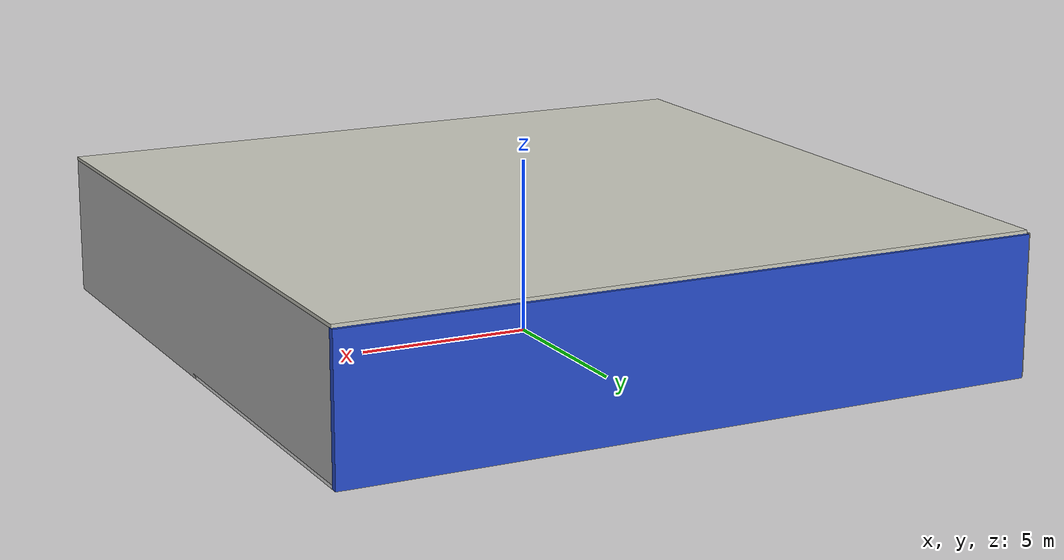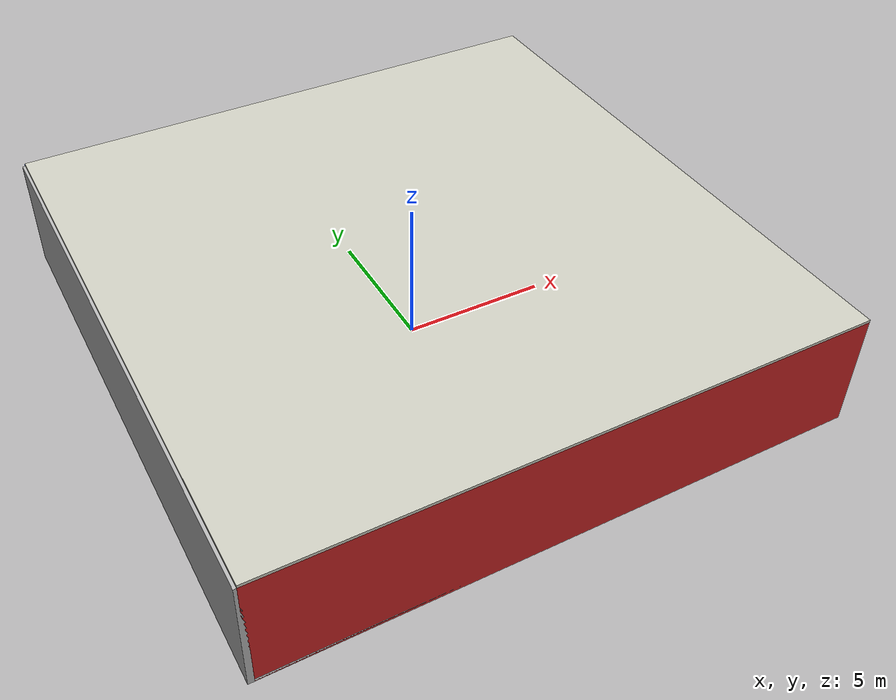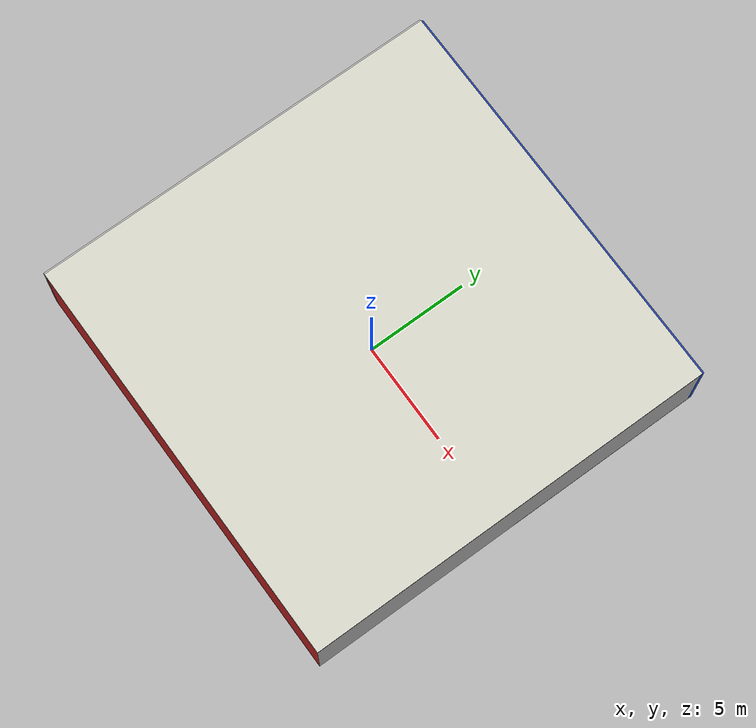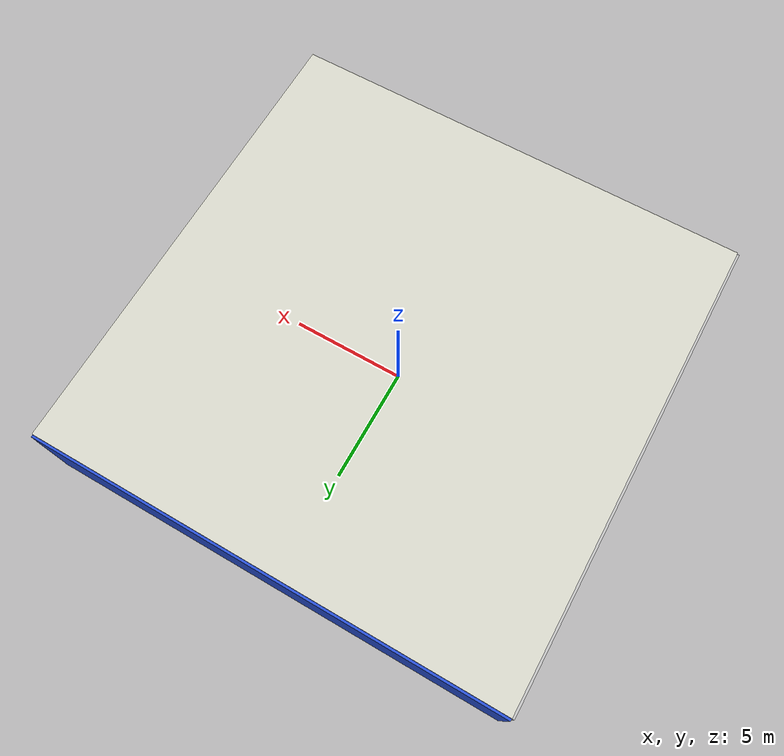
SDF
<sdf version="1.4">
 <world name="default">
  <physics type="ode">
   <max_step_size>0.001</max_step_size>
   <real_time_factor>1</real_time_factor>
   <real_time_update_rate>1000</real_time_update_rate>
   <gravity>0 0 -9.8</gravity>
  </physics>
  <scene><ambient>0.4 0.4 0.4 1</ambient><background>0.7 0.7 0.7 1</background><shadows>1</shadows></scene>
  <model name="Surrounding">
   <static>1</static>
   <link name="Ceiling">
    <collision name="Ceiling_Collision"><geometry><box><size>20 20 0.1</size></box></geometry></collision>
    <visual name="Ceiling_Visual">
     <geometry><box><size>20 20 0.1</size></box></geometry>
     <material>
      <script><uri>file://media/materials/scripts/gazebo.material</uri><name>Gazebo/PaintedWall</name></script>
     </material>
    </visual>
    <pose>0 0 4.05 0 0 0</pose>
   </link>
   <link name="Wall_South">
    <collision name="Wall_South_Collision">
     <geometry><box><size>20 0 4</size></box></geometry>
     <pose>0 0 2 0 -0 0</pose>
    </collision>
    <visual name="Wall_South_Visual">
     <pose>0 0 2 0 -0 0</pose>
     <geometry><box><size>20 0 4</size></box></geometry>
     <material>
      <script><uri>file://media/materials/scripts/gazebo.material</uri><name>Gazebo/RedBright</name></script>
     </material>
    </visual>
    <velocity_decay><linear>0</linear><angular>0</angular></velocity_decay>
    <pose>0 -10 0 0 -0 0</pose>
   </link>
   <link name="Wall_East">
    <collision name="Wall_21_Collision">
     <geometry><box><size>20 0 4</size></box></geometry>
     <pose>0 0 2 0 -0 0</pose>
    </collision>
    <visual name="Wall_21_Visual">
     <pose>0 0 2 0 -0 0</pose>
     <geometry><box><size>20 0 4</size></box></geometry>
     <material>
      <script><uri>file://media/materials/scripts/gazebo.material</uri><name>Gazebo/JointAnchor</name></script>
     </material>
    </visual>
    <velocity_decay><linear>0</linear><angular>0</angular></velocity_decay>
    <pose>10 0 0 0 -0 1.5708</pose>
   </link>
   <link name="Wall_North">
    <collision name="Wall_22_Collision">
     <geometry><box><size>20 0.2 4</size></box></geometry>
     <pose>0 0 2 0 -0 0</pose>
    </collision>
    <visual name="Wall_22_Visual">
     <pose>0 0 2 0 -0 0</pose>
     <geometry><box><size>20 0.2 4</size></box></geometry>
     <material>
      <script><uri>file://media/materials/scripts/gazebo.material</uri><name>Gazebo/Blue</name></script>
     </material>
    </visual>
    <velocity_decay><linear>0</linear><angular>0</angular></velocity_decay>
    <pose>0 10 0 0 -0 0</pose>
   </link>
   <link name="Wall_West">
    <collision name="Wall_23_Collision">
     <geometry><box><size>20 0.2 4</size></box></geometry>
     <pose>0 0 2 0 -0 0</pose>
    </collision>
    <visual name="Wall_23_Visual">
     <pose>0 0 2 0 -0 0</pose>
     <geometry><box><size>20 0.2 4</size></box></geometry>
     <material>
      <script><uri>file://media/materials/scripts/gazebo.material</uri><name>Gazebo/LightOn</name></script>
     </material>
    </visual>
    <velocity_decay><linear>0</linear><angular>0</angular></velocity_decay>
    <pose>-10 0 0 0 0 -1.5708</pose>
   </link>
   <link name="Ground_link">
    <collision name="collision">
     <pose>0 0 .05 0 -0 0</pose>
     <geometry><box><size>20 20 0.1</size></box></geometry>
    </collision>
    <visual name="visual">
     <pose>0 0 .05 0 -0 0</pose>
     <geometry><box><size>20 20 0.1</size></box></geometry>
     <material>
      <script><uri>file://media/materials/scripts/gazebo.material</uri><name>Gazebo/White</name></script>
     </material>
    </visual>
   </link>
   <static>1</static>
  </model>
  <spherical_coordinates>
   <surface_model>EARTH_WGS84</surface_model>
   <latitude_deg>0</latitude_deg>
   <longitude_deg>0</longitude_deg>
   <elevation>0</elevation>
   <heading_deg>0</heading_deg>
  </spherical_coordinates>
  <light name="lightball_0" type="diffuse">
   <diffuse>0.8 0.8 0.8 1</diffuse>
   <specular>0.2 0.2 0.2 1</specular>
   <attenuation>
    <range>100</range>
    <constant>0.7</constant>
    <linear>0.01</linear>
    <quadratic>0.001</quadratic>
   </attenuation>
   <direction>-0.5 0.1 -0.9</direction>
   <pose>0.441850580951 3.11980645518 3.51329309058 0 0 0</pose>
  </light>
  <light name="lightball_1" type="diffuse">
   <diffuse>0.8 0.8 0.8 1</diffuse>
   <specular>0.2 0.2 0.2 1</specular>
   <attenuation>
    <range>100</range>
    <constant>0.7</constant>
    <linear>0.01</linear>
    <quadratic>0.001</quadratic>
   </attenuation>
   <direction>-0.5 0.1 -0.9</direction>
   <pose>2.60991667723 -4.47057046405 1.07724373263 0 0 0</pose>
  </light>
  <light name="lightball_2" type="diffuse">
   <diffuse>0.8 0.8 0.8 1</diffuse>
   <specular>0.2 0.2 0.2 1</specular>
   <attenuation>
    <range>100</range>
    <constant>0.7</constant>
    <linear>0.01</linear>
    <quadratic>0.001</quadratic>
   </attenuation>
   <direction>-0.5 0.1 -0.9</direction>
   <pose>8.43370546976 -5.75697799747 0.509564833327 0 0 0</pose>
  </light>
  <light name="lightball_3" type="diffuse">
   <diffuse>0.8 0.8 0.8 1</diffuse>
   <specular>0.2 0.2 0.2 1</specular>
   <attenuation>
    <range>100</range>
    <constant>0.7</constant>
    <linear>0.01</linear>
    <quadratic>0.001</quadratic>
   </attenuation>
   <direction>-0.5 0.1 -0.9</direction>
   <pose>-3.82197073406 6.41072580045 1.46821790017 0 0 0</pose>
  </light>
  <light name="lightball_4" type="diffuse">
   <diffuse>0.8 0.8 0.8 1</diffuse>
   <specular>0.2 0.2 0.2 1</specular>
   <attenuation>
    <range>100</range>
    <constant>0.7</constant>
    <linear>0.01</linear>
    <quadratic>0.001</quadratic>
   </attenuation>
   <direction>-0.5 0.1 -0.9</direction>
   <pose>5.29973477295 4.16604030252 0.88564650447 0 0 0</pose>
  </light>
  <light name="lightball_5" type="diffuse">
   <diffuse>0.8 0.8 0.8 1</diffuse>
   <specular>0.2 0.2 0.2 1</specular>
   <attenuation>
    <range>100</range>
    <constant>0.7</constant>
    <linear>0.01</linear>
    <quadratic>0.001</quadratic>
   </attenuation>
   <direction>-0.5 0.1 -0.9</direction>
   <pose>7.77282231633 -8.80086971593 3.57505234315 0 0 0</pose>
  </light>
  <light name="lightball_6" type="diffuse">
   <diffuse>0.8 0.8 0.8 1</diffuse>
   <specular>0.2 0.2 0.2 1</specular>
   <attenuation>
    <range>100</range>
    <constant>0.7</constant>
    <linear>0.01</linear>
    <quadratic>0.001</quadratic>
   </attenuation>
   <direction>-0.5 0.1 -0.9</direction>
   <pose>3.44241358507 -7.25172105229 2.97804608958 0 0 0</pose>
  </light>
  <light name="lightball_7" type="diffuse">
   <diffuse>0.8 0.8 0.8 1</diffuse>
   <specular>0.2 0.2 0.2 1</specular>
   <attenuation>
    <range>100</range>
    <constant>0.7</constant>
    <linear>0.01</linear>
    <quadratic>0.001</quadratic>
   </attenuation>
   <direction>-0.5 0.1 -0.9</direction>
   <pose>-6.08834964406 -7.14489406565 3.6901119525 0 0 0</pose>
  </light>
  <light name="lightball_8" type="diffuse">
   <diffuse>0.8 0.8 0.8 1</diffuse>
   <specular>0.2 0.2 0.2 1</specular>
   <attenuation>
    <range>100</range>
    <constant>0.7</constant>
    <linear>0.01</linear>
    <quadratic>0.001</quadratic>
   </attenuation>
   <direction>-0.5 0.1 -0.9</direction>
   <pose>0.917968863695 -5.25585319844 0.964143555793 0 0 0</pose>
  </light>
  <light name="lightball_9" type="diffuse">
   <diffuse>0.8 0.8 0.8 1</diffuse>
   <specular>0.2 0.2 0.2 1</specular>
   <attenuation>
    <range>100</range>
    <constant>0.7</constant>
    <linear>0.01</linear>
    <quadratic>0.001</quadratic>
   </attenuation>
   <direction>-0.5 0.1 -0.9</direction>
   <pose>-0.824516524966 5.65785191471 2.65211587495 0 0 0</pose>
  </light>
  <light name="lightball_10" type="diffuse">
   <diffuse>0.8 0.8 0.8 1</diffuse>
   <specular>0.2 0.2 0.2 1</specular>
   <attenuation>
    <range>100</range>
    <constant>0.7</constant>
    <linear>0.01</linear>
    <quadratic>0.001</quadratic>
   </attenuation>
   <direction>-0.5 0.1 -0.9</direction>
   <pose>-6.97678539938 -3.50689346996 3.16923533895 0 0 0</pose>
  </light>
  <light name="lightball_11" type="diffuse">
   <diffuse>0.8 0.8 0.8 1</diffuse>
   <specular>0.2 0.2 0.2 1</specular>
   <attenuation>
    <range>100</range>
    <constant>0.7</constant>
    <linear>0.01</linear>
    <quadratic>0.001</quadratic>
   </attenuation>
   <direction>-0.5 0.1 -0.9</direction>
   <pose>-7.75914407279 0.461494291683 3.58875286976 0 0 0</pose>
  </light>
  <include><uri>model://cabinet</uri><pose>-6.89333476824 -7.25130632078 0 0 0 0.453742583599</pose></include>
  <include><uri>model://cabinet</uri><pose>-6.97671962681 -2.25770859887 0 0 0 1.46077094833</pose></include>
  <include>
   <uri>model://construction_cone</uri>
   <pose>-3.90411887403 -3.96689448361 0 0 0 1.47054327729</pose>
  </include>
  <include><uri>model://cabinet</uri><pose>-5.01994761025 1.95667570475 0 0 0 0.625307606424</pose></include>
  <include><uri>model://cabinet</uri><pose>-1.27515056836 -7.96256406088 0 0 0 1.2223402104</pose></include>
  <include><uri>model://cabinet</uri><pose>1.44649917344 7.20374697225 0 0 0 1.43767453116</pose></include>
  <include><uri>model://cabinet</uri><pose>6.7528642946 8.26097086481 0 0 0 2.47743552988</pose></include>
 </world>
</sdf>

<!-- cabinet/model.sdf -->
<sdf version="1.5">
  <model name="cabinet">
    <static>true</static>
    <link name="cabinet_bottom_plate">
      <inertial>
        <pose>0 0 -1 0 0 0</pose>
        <inertia>
          <ixx>2.050000</ixx>
          <ixy>0</ixy>
          <ixz>0</ixz>
          <iyy>2.050000</iyy>
          <iyz>0</iyz>
          <izz>2.050000</izz>
        </inertia>
        <mass>25.000000</mass>
      </inertial>
      <collision name="cabinet_bottom_plate_geom">
        <pose>0 0 0.010000 0 0 0</pose>
        <geometry>
          <box>
            <size>0.450000 0.450000 0.020000</size>
          </box>
        </geometry>
      </collision>
      <visual name="cabinet_bottom_plate_geom_visual">
        <pose>0 0 0.010000 0 0 0</pose>
        <geometry>
          <box>
            <size>0.450000 0.450000 0.020000</size>
          </box>
        </geometry>
        <material>
          <script>
            <uri>model://media/materials/scripts/gazebo.material</uri>
            <name>Gazebo/Wood</name>
          </script>
        </material>
      </visual>
      <collision name="cabinet_bottom_plate_geom_cabinet_back_plate">
        <pose>0.235000 0 0.510000 0 0 0</pose>
        <geometry>
          <box>
            <size>0.020000 0.450000 1.020000</size>
          </box>
        </geometry>
      </collision>
      <visual name="cabinet_bottom_plate_geom_cabinet_back_plate_visual">
        <pose>0.235000 0 0.510000 0 0 0</pose>
        <geometry>
          <box>
            <size>0.020000 0.450000 1.020000</size>
          </box>
        </geometry>
        <material>
          <script>
            <uri>model://media/materials/scripts/gazebo.material</uri>
            <name>Gazebo/Wood</name>
          </script>
        </material>
      </visual>
      <collision name="cabinet_bottom_plate_geom_cabinet_left_plate">
        <pose>0 0.235000 0.510000 0 0 0</pose>
        <geometry>
          <box>
            <size>0.450000 0.020000 1.020000</size>
          </box>
        </geometry>
      </collision>
      <visual name="cabinet_bottom_plate_geom_cabinet_left_plate_visual">
        <pose>0 0.235000 0.510000 0 0 0</pose>
        <geometry>
          <box>
            <size>0.450000 0.020000 1.020000</size>
          </box>
        </geometry>
        <material>
          <script>
            <uri>model://media/materials/scripts/gazebo.material</uri>
            <name>Gazebo/Wood</name>
          </script>
        </material>
      </visual>
      <collision name="cabinet_bottom_plate_geom_cabinet_middle_plate">
        <pose>0 0 0.510000 0 0 0</pose>
        <geometry>
          <box>
            <size>0.450000 0.450000 0.020000</size>
          </box>
        </geometry>
      </collision>
      <visual name="cabinet_bottom_plate_geom_cabinet_middle_plate_visual">
        <pose>0 0 0.510000 0 0 0</pose>
        <geometry>
          <box>
            <size>0.450000 0.450000 0.020000</size>
          </box>
        </geometry>
        <material>
          <script>
            <uri>model://media/materials/scripts/gazebo.material</uri>
            <name>Gazebo/Wood</name>
          </script>
        </material>
      </visual>
      <collision name="cabinet_bottom_plate_geom_cabinet_right_plate">
        <pose>0 -0.235000 0.510000 0 0 0</pose>
        <geometry>
          <box>
            <size>0.450000 0.020000 1.020000</size>
          </box>
        </geometry>
      </collision>
      <visual name="cabinet_bottom_plate_geom_cabinet_right_plate_visual">
        <pose>0 -0.235000 0.510000 0 0 0</pose>
        <geometry>
          <box>
            <size>0.450000 0.020000 1.020000</size>
          </box>
        </geometry>
        <material>
          <script>
            <uri>model://media/materials/scripts/gazebo.material</uri>
            <name>Gazebo/Wood</name>
          </script>
        </material>
      </visual>
      <collision name="cabinet_bottom_plate_geom_cabinet_top_plate">
        <pose>0 0 1.010000 0 0 0</pose>
        <geometry>
          <box>
            <size>0.450000 0.450000 0.020000</size>
          </box>
        </geometry>
      </collision>
      <visual name="cabinet_bottom_plate_geom_cabinet_top_plate_visual">
        <pose>0 0 1.010000 0 0 0</pose>
        <geometry>
          <box>
            <size>0.450000 0.450000 0.020000</size>
          </box>
        </geometry>
        <material>
          <script>
            <uri>model://media/materials/scripts/gazebo.material</uri>
            <name>Gazebo/Wood</name>
          </script>
        </material>
      </visual>
    </link>
  </model>
</sdf>

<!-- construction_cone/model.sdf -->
<sdf version="1.5">
  <model name="Construction Cone">
    <link name="link">
      <collision name="collision">
        <geometry>
          <mesh>
            <scale>10 10 10</scale>
            <uri>file://isr-testbed/construction_cone/meshes/construction_cone.dae</uri>
          </mesh>
        </geometry>
      </collision>
      <visual name="visual">
        <geometry>
          <mesh>
            <scale>10 10 10</scale>
            <uri>file://isr-testbed/construction_cone/meshes/construction_cone.dae</uri>
          </mesh>
        </geometry>
      </visual>
    </link>
  </model>
</sdf>
